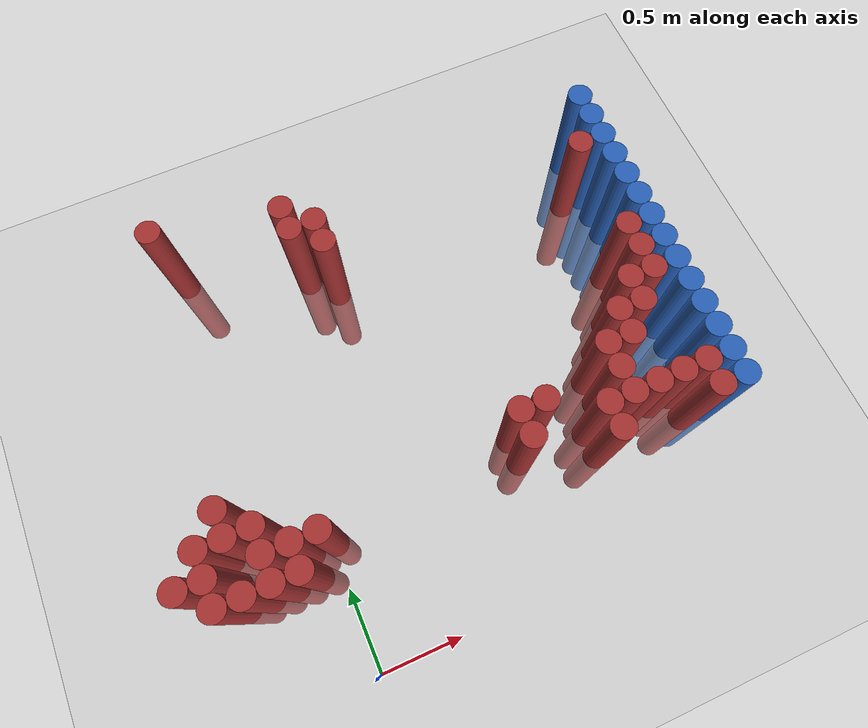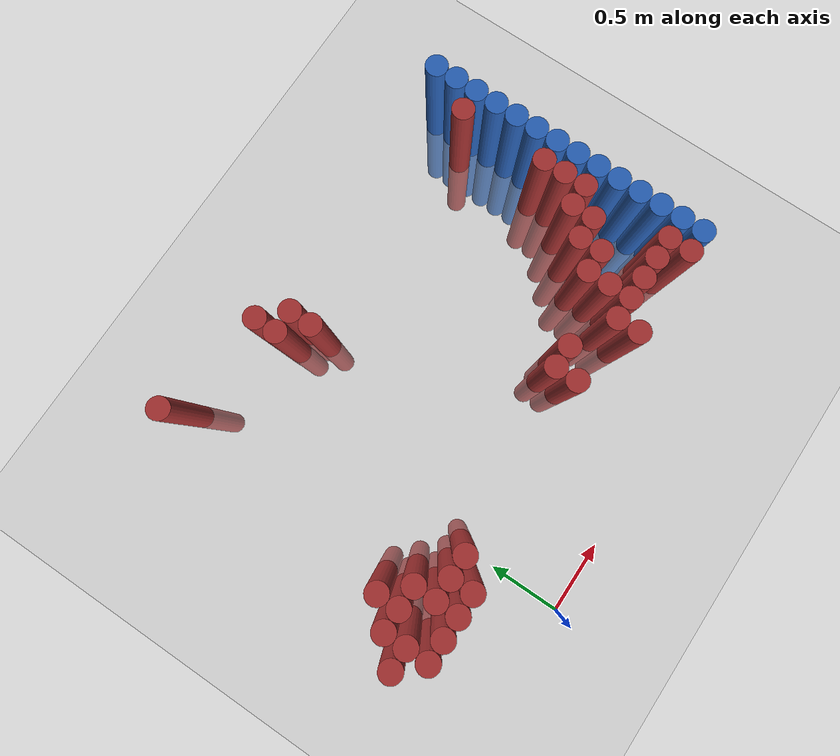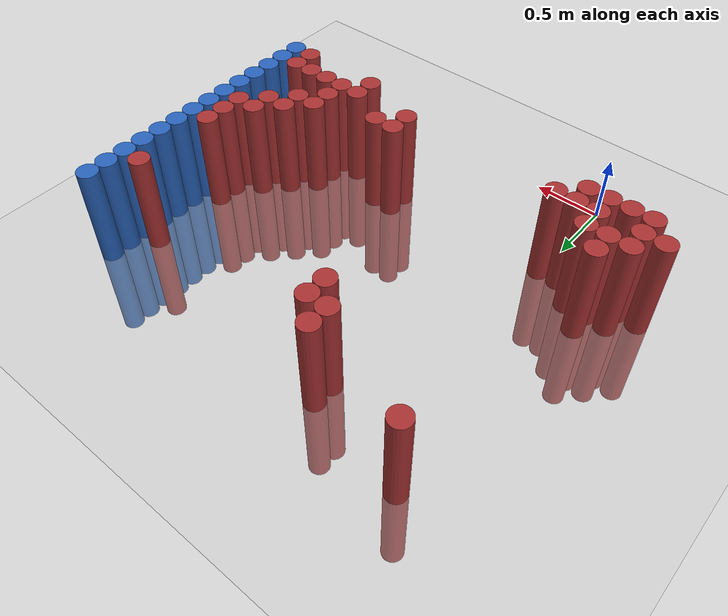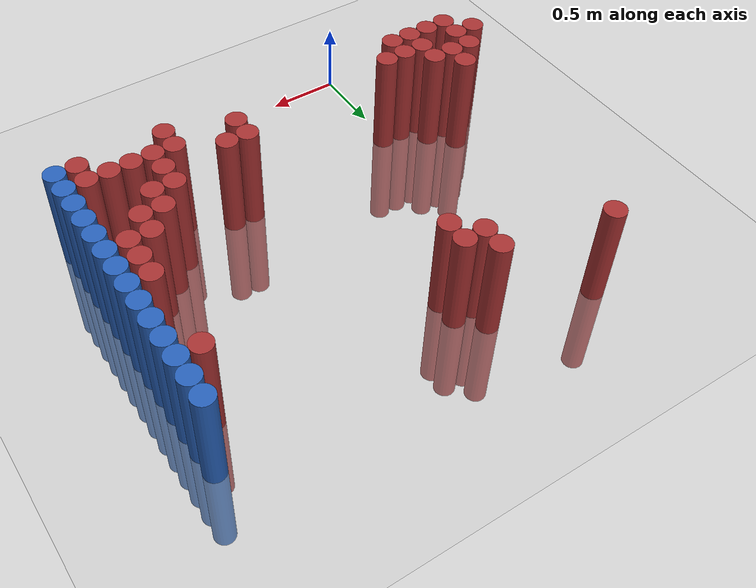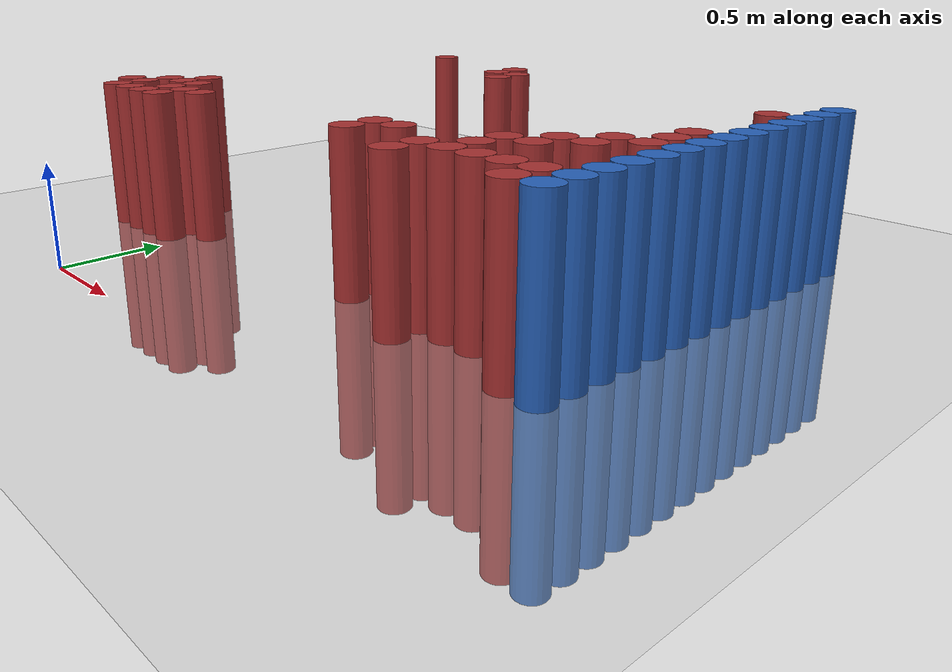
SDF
<sdf version="1.6">
 <world name="default">
  <model name="ground_plane">
   <static>1</static>
   <link name="link">
    <collision name="collision">
     <geometry><plane><normal>0 0 1</normal><size>100 100</size></plane></geometry>
     <surface><friction><ode><mu>100</mu><mu2>50</mu2></ode></friction></surface>
    </collision>
    <visual name="visual">
     <cast_shadows>0</cast_shadows>
     <geometry><plane><normal>0 0 1</normal><size>100 100</size></plane></geometry>
     <material>
      <script><uri>file://media/materials/scripts/gazebo.material</uri><name>Gazebo/Grey</name></script>
     </material>
    </visual>
   </link>
  </model>
  <model name="unit_cylinder_159">
   <static>1</static>
   <pose>-0.725000 0.775000 0.000000 0.000000 0.000000 0.000000</pose>
   <link name="link">
    <inertial>
     <mass>1</mass>
     <inertia><ixx>0.145833</ixx><ixy>0</ixy><ixz>0</ixz><iyy>0.145833</iyy><iyz>0</iyz><izz>0.125</izz></inertia>
    </inertial>
    <collision name="collision">
     <geometry><cylinder><radius>0.075000</radius><length>1.5</length></cylinder></geometry>
    </collision>
    <visual name="visual">
     <geometry><cylinder><radius>0.075000</radius><length>1.5</length></cylinder></geometry>
     <material>
      <ambient>0.648000 0.192000 0.192000 1</ambient>
      <diffuse>0.648000 0.192000 0.192000 1</diffuse>
     </material>
     <material>
      <script><name>Gazebo/Grey</name><uri>file://media/materials/scripts/gazebo.material</uri></script>
     </material>
    </visual>
   </link>
  </model>
  <model name="unit_cylinder_163">
   <static>1</static>
   <pose>-0.575000 0.625000 0.000000 0.000000 0.000000 0.000000</pose>
   <link name="link">
    <inertial>
     <mass>1</mass>
     <inertia><ixx>0.145833</ixx><ixy>0</ixy><ixz>0</ixz><iyy>0.145833</iyy><iyz>0</iyz><izz>0.125</izz></inertia>
    </inertial>
    <collision name="collision">
     <geometry><cylinder><radius>0.075000</radius><length>1.5</length></cylinder></geometry>
    </collision>
    <visual name="visual">
     <geometry><cylinder><radius>0.075000</radius><length>1.5</length></cylinder></geometry>
     <material>
      <ambient>0.648000 0.192000 0.192000 1</ambient>
      <diffuse>0.648000 0.192000 0.192000 1</diffuse>
     </material>
     <material>
      <script><name>Gazebo/Grey</name><uri>file://media/materials/scripts/gazebo.material</uri></script>
     </material>
    </visual>
   </link>
  </model>
  <model name="unit_cylinder_164">
   <static>1</static>
   <pose>-0.575000 0.775000 0.000000 0.000000 0.000000 0.000000</pose>
   <link name="link">
    <inertial>
     <mass>1</mass>
     <inertia><ixx>0.145833</ixx><ixy>0</ixy><ixz>0</ixz><iyy>0.145833</iyy><iyz>0</iyz><izz>0.125</izz></inertia>
    </inertial>
    <collision name="collision">
     <geometry><cylinder><radius>0.075000</radius><length>1.5</length></cylinder></geometry>
    </collision>
    <visual name="visual">
     <geometry><cylinder><radius>0.075000</radius><length>1.5</length></cylinder></geometry>
     <material>
      <ambient>0.648000 0.192000 0.192000 1</ambient>
      <diffuse>0.648000 0.192000 0.192000 1</diffuse>
     </material>
     <material>
      <script><name>Gazebo/Grey</name><uri>file://media/materials/scripts/gazebo.material</uri></script>
     </material>
    </visual>
   </link>
  </model>
  <model name="unit_cylinder_165">
   <static>1</static>
   <pose>-0.575000 0.925000 0.000000 0.000000 0.000000 0.000000</pose>
   <link name="link">
    <inertial>
     <mass>1</mass>
     <inertia><ixx>0.145833</ixx><ixy>0</ixy><ixz>0</ixz><iyy>0.145833</iyy><iyz>0</iyz><izz>0.125</izz></inertia>
    </inertial>
    <collision name="collision">
     <geometry><cylinder><radius>0.075000</radius><length>1.5</length></cylinder></geometry>
    </collision>
    <visual name="visual">
     <geometry><cylinder><radius>0.075000</radius><length>1.5</length></cylinder></geometry>
     <material>
      <ambient>0.648000 0.192000 0.192000 1</ambient>
      <diffuse>0.648000 0.192000 0.192000 1</diffuse>
     </material>
     <material>
      <script><name>Gazebo/Grey</name><uri>file://media/materials/scripts/gazebo.material</uri></script>
     </material>
    </visual>
   </link>
  </model>
  <model name="unit_cylinder_169">
   <static>1</static>
   <pose>-0.425000 0.625000 0.000000 0.000000 0.000000 0.000000</pose>
   <link name="link">
    <inertial>
     <mass>1</mass>
     <inertia><ixx>0.145833</ixx><ixy>0</ixy><ixz>0</ixz><iyy>0.145833</iyy><iyz>0</iyz><izz>0.125</izz></inertia>
    </inertial>
    <collision name="collision">
     <geometry><cylinder><radius>0.075000</radius><length>1.5</length></cylinder></geometry>
    </collision>
    <visual name="visual">
     <geometry><cylinder><radius>0.075000</radius><length>1.5</length></cylinder></geometry>
     <material>
      <ambient>0.648000 0.192000 0.192000 1</ambient>
      <diffuse>0.648000 0.192000 0.192000 1</diffuse>
     </material>
     <material>
      <script><name>Gazebo/Grey</name><uri>file://media/materials/scripts/gazebo.material</uri></script>
     </material>
    </visual>
   </link>
  </model>
  <model name="unit_cylinder_170">
   <static>1</static>
   <pose>-0.425000 0.925000 0.000000 0.000000 0.000000 0.000000</pose>
   <link name="link">
    <inertial>
     <mass>1</mass>
     <inertia><ixx>0.145833</ixx><ixy>0</ixy><ixz>0</ixz><iyy>0.145833</iyy><iyz>0</iyz><izz>0.125</izz></inertia>
    </inertial>
    <collision name="collision">
     <geometry><cylinder><radius>0.075000</radius><length>1.5</length></cylinder></geometry>
    </collision>
    <visual name="visual">
     <geometry><cylinder><radius>0.075000</radius><length>1.5</length></cylinder></geometry>
     <material>
      <ambient>0.648000 0.192000 0.192000 1</ambient>
      <diffuse>0.648000 0.192000 0.192000 1</diffuse>
     </material>
     <material>
      <script><name>Gazebo/Grey</name><uri>file://media/materials/scripts/gazebo.material</uri></script>
     </material>
    </visual>
   </link>
  </model>
  <model name="unit_cylinder_171">
   <static>1</static>
   <pose>-0.425000 1.075000 0.000000 0.000000 0.000000 0.000000</pose>
   <link name="link">
    <inertial>
     <mass>1</mass>
     <inertia><ixx>0.145833</ixx><ixy>0</ixy><ixz>0</ixz><iyy>0.145833</iyy><iyz>0</iyz><izz>0.125</izz></inertia>
    </inertial>
    <collision name="collision">
     <geometry><cylinder><radius>0.075000</radius><length>1.5</length></cylinder></geometry>
    </collision>
    <visual name="visual">
     <geometry><cylinder><radius>0.075000</radius><length>1.5</length></cylinder></geometry>
     <material>
      <ambient>0.648000 0.192000 0.192000 1</ambient>
      <diffuse>0.648000 0.192000 0.192000 1</diffuse>
     </material>
     <material>
      <script><name>Gazebo/Grey</name><uri>file://media/materials/scripts/gazebo.material</uri></script>
     </material>
    </visual>
   </link>
  </model>
  <model name="unit_cylinder_176">
   <static>1</static>
   <pose>-0.275000 0.625000 0.000000 0.000000 0.000000 0.000000</pose>
   <link name="link">
    <inertial>
     <mass>1</mass>
     <inertia><ixx>0.145833</ixx><ixy>0</ixy><ixz>0</ixz><iyy>0.145833</iyy><iyz>0</iyz><izz>0.125</izz></inertia>
    </inertial>
    <collision name="collision">
     <geometry><cylinder><radius>0.075000</radius><length>1.5</length></cylinder></geometry>
    </collision>
    <visual name="visual">
     <geometry><cylinder><radius>0.075000</radius><length>1.5</length></cylinder></geometry>
     <material>
      <ambient>0.648000 0.192000 0.192000 1</ambient>
      <diffuse>0.648000 0.192000 0.192000 1</diffuse>
     </material>
     <material>
      <script><name>Gazebo/Grey</name><uri>file://media/materials/scripts/gazebo.material</uri></script>
     </material>
    </visual>
   </link>
  </model>
  <model name="unit_cylinder_177">
   <static>1</static>
   <pose>-0.275000 0.775000 0.000000 0.000000 0.000000 0.000000</pose>
   <link name="link">
    <inertial>
     <mass>1</mass>
     <inertia><ixx>0.145833</ixx><ixy>0</ixy><ixz>0</ixz><iyy>0.145833</iyy><iyz>0</iyz><izz>0.125</izz></inertia>
    </inertial>
    <collision name="collision">
     <geometry><cylinder><radius>0.075000</radius><length>1.5</length></cylinder></geometry>
    </collision>
    <visual name="visual">
     <geometry><cylinder><radius>0.075000</radius><length>1.5</length></cylinder></geometry>
     <material>
      <ambient>0.648000 0.192000 0.192000 1</ambient>
      <diffuse>0.648000 0.192000 0.192000 1</diffuse>
     </material>
     <material>
      <script><name>Gazebo/Grey</name><uri>file://media/materials/scripts/gazebo.material</uri></script>
     </material>
    </visual>
   </link>
  </model>
  <model name="unit_cylinder_178">
   <static>1</static>
   <pose>-0.275000 0.925000 0.000000 0.000000 0.000000 0.000000</pose>
   <link name="link">
    <inertial>
     <mass>1</mass>
     <inertia><ixx>0.145833</ixx><ixy>0</ixy><ixz>0</ixz><iyy>0.145833</iyy><iyz>0</iyz><izz>0.125</izz></inertia>
    </inertial>
    <collision name="collision">
     <geometry><cylinder><radius>0.075000</radius><length>1.5</length></cylinder></geometry>
    </collision>
    <visual name="visual">
     <geometry><cylinder><radius>0.075000</radius><length>1.5</length></cylinder></geometry>
     <material>
      <ambient>0.648000 0.192000 0.192000 1</ambient>
      <diffuse>0.648000 0.192000 0.192000 1</diffuse>
     </material>
     <material>
      <script><name>Gazebo/Grey</name><uri>file://media/materials/scripts/gazebo.material</uri></script>
     </material>
    </visual>
   </link>
  </model>
  <model name="unit_cylinder_179">
   <static>1</static>
   <pose>-0.275000 2.725000 0.000000 0.000000 0.000000 0.000000</pose>
   <link name="link">
    <inertial>
     <mass>1</mass>
     <inertia><ixx>0.145833</ixx><ixy>0</ixy><ixz>0</ixz><iyy>0.145833</iyy><iyz>0</iyz><izz>0.125</izz></inertia>
    </inertial>
    <collision name="collision">
     <geometry><cylinder><radius>0.075000</radius><length>1.5</length></cylinder></geometry>
    </collision>
    <visual name="visual">
     <geometry><cylinder><radius>0.075000</radius><length>1.5</length></cylinder></geometry>
     <material>
      <ambient>0.648000 0.192000 0.192000 1</ambient>
      <diffuse>0.648000 0.192000 0.192000 1</diffuse>
     </material>
     <material>
      <script><name>Gazebo/Grey</name><uri>file://media/materials/scripts/gazebo.material</uri></script>
     </material>
    </visual>
   </link>
  </model>
  <model name="unit_cylinder_181">
   <static>1</static>
   <pose>-0.125000 0.625000 0.000000 0.000000 0.000000 0.000000</pose>
   <link name="link">
    <inertial>
     <mass>1</mass>
     <inertia><ixx>0.145833</ixx><ixy>0</ixy><ixz>0</ixz><iyy>0.145833</iyy><iyz>0</iyz><izz>0.125</izz></inertia>
    </inertial>
    <collision name="collision">
     <geometry><cylinder><radius>0.075000</radius><length>1.5</length></cylinder></geometry>
    </collision>
    <visual name="visual">
     <geometry><cylinder><radius>0.075000</radius><length>1.5</length></cylinder></geometry>
     <material>
      <ambient>0.648000 0.192000 0.192000 1</ambient>
      <diffuse>0.648000 0.192000 0.192000 1</diffuse>
     </material>
     <material>
      <script><name>Gazebo/Grey</name><uri>file://media/materials/scripts/gazebo.material</uri></script>
     </material>
    </visual>
   </link>
  </model>
  <model name="unit_cylinder_182">
   <static>1</static>
   <pose>-0.125000 0.775000 0.000000 0.000000 0.000000 0.000000</pose>
   <link name="link">
    <inertial>
     <mass>1</mass>
     <inertia><ixx>0.145833</ixx><ixy>0</ixy><ixz>0</ixz><iyy>0.145833</iyy><iyz>0</iyz><izz>0.125</izz></inertia>
    </inertial>
    <collision name="collision">
     <geometry><cylinder><radius>0.075000</radius><length>1.5</length></cylinder></geometry>
    </collision>
    <visual name="visual">
     <geometry><cylinder><radius>0.075000</radius><length>1.5</length></cylinder></geometry>
     <material>
      <ambient>0.648000 0.192000 0.192000 1</ambient>
      <diffuse>0.648000 0.192000 0.192000 1</diffuse>
     </material>
     <material>
      <script><name>Gazebo/Grey</name><uri>file://media/materials/scripts/gazebo.material</uri></script>
     </material>
    </visual>
   </link>
  </model>
  <model name="unit_cylinder_187">
   <static>1</static>
   <pose>0.025000 0.775000 0.000000 0.000000 0.000000 0.000000</pose>
   <link name="link">
    <inertial>
     <mass>1</mass>
     <inertia><ixx>0.145833</ixx><ixy>0</ixy><ixz>0</ixz><iyy>0.145833</iyy><iyz>0</iyz><izz>0.125</izz></inertia>
    </inertial>
    <collision name="collision">
     <geometry><cylinder><radius>0.075000</radius><length>1.5</length></cylinder></geometry>
    </collision>
    <visual name="visual">
     <geometry><cylinder><radius>0.075000</radius><length>1.5</length></cylinder></geometry>
     <material>
      <ambient>0.648000 0.192000 0.192000 1</ambient>
      <diffuse>0.648000 0.192000 0.192000 1</diffuse>
     </material>
     <material>
      <script><name>Gazebo/Grey</name><uri>file://media/materials/scripts/gazebo.material</uri></script>
     </material>
    </visual>
   </link>
  </model>
  <model name="unit_cylinder_196">
   <static>1</static>
   <pose>0.475000 2.425000 0.000000 0.000000 0.000000 0.000000</pose>
   <link name="link">
    <inertial>
     <mass>1</mass>
     <inertia><ixx>0.145833</ixx><ixy>0</ixy><ixz>0</ixz><iyy>0.145833</iyy><iyz>0</iyz><izz>0.125</izz></inertia>
    </inertial>
    <collision name="collision">
     <geometry><cylinder><radius>0.075000</radius><length>1.5</length></cylinder></geometry>
    </collision>
    <visual name="visual">
     <geometry><cylinder><radius>0.075000</radius><length>1.5</length></cylinder></geometry>
     <material>
      <ambient>0.648000 0.192000 0.192000 1</ambient>
      <diffuse>0.648000 0.192000 0.192000 1</diffuse>
     </material>
     <material>
      <script><name>Gazebo/Grey</name><uri>file://media/materials/scripts/gazebo.material</uri></script>
     </material>
    </visual>
   </link>
  </model>
  <model name="unit_cylinder_197">
   <static>1</static>
   <pose>0.475000 2.575000 0.000000 0.000000 0.000000 0.000000</pose>
   <link name="link">
    <inertial>
     <mass>1</mass>
     <inertia><ixx>0.145833</ixx><ixy>0</ixy><ixz>0</ixz><iyy>0.145833</iyy><iyz>0</iyz><izz>0.125</izz></inertia>
    </inertial>
    <collision name="collision">
     <geometry><cylinder><radius>0.075000</radius><length>1.5</length></cylinder></geometry>
    </collision>
    <visual name="visual">
     <geometry><cylinder><radius>0.075000</radius><length>1.5</length></cylinder></geometry>
     <material>
      <ambient>0.648000 0.192000 0.192000 1</ambient>
      <diffuse>0.648000 0.192000 0.192000 1</diffuse>
     </material>
     <material>
      <script><name>Gazebo/Grey</name><uri>file://media/materials/scripts/gazebo.material</uri></script>
     </material>
    </visual>
   </link>
  </model>
  <model name="unit_cylinder_198">
   <static>1</static>
   <pose>0.625000 2.275000 0.000000 0.000000 0.000000 0.000000</pose>
   <link name="link">
    <inertial>
     <mass>1</mass>
     <inertia><ixx>0.145833</ixx><ixy>0</ixy><ixz>0</ixz><iyy>0.145833</iyy><iyz>0</iyz><izz>0.125</izz></inertia>
    </inertial>
    <collision name="collision">
     <geometry><cylinder><radius>0.075000</radius><length>1.5</length></cylinder></geometry>
    </collision>
    <visual name="visual">
     <geometry><cylinder><radius>0.075000</radius><length>1.5</length></cylinder></geometry>
     <material>
      <ambient>0.648000 0.192000 0.192000 1</ambient>
      <diffuse>0.648000 0.192000 0.192000 1</diffuse>
     </material>
     <material>
      <script><name>Gazebo/Grey</name><uri>file://media/materials/scripts/gazebo.material</uri></script>
     </material>
    </visual>
   </link>
  </model>
  <model name="unit_cylinder_199">
   <static>1</static>
   <pose>0.625000 2.425000 0.000000 0.000000 0.000000 0.000000</pose>
   <link name="link">
    <inertial>
     <mass>1</mass>
     <inertia><ixx>0.145833</ixx><ixy>0</ixy><ixz>0</ixz><iyy>0.145833</iyy><iyz>0</iyz><izz>0.125</izz></inertia>
    </inertial>
    <collision name="collision">
     <geometry><cylinder><radius>0.075000</radius><length>1.5</length></cylinder></geometry>
    </collision>
    <visual name="visual">
     <geometry><cylinder><radius>0.075000</radius><length>1.5</length></cylinder></geometry>
     <material>
      <ambient>0.648000 0.192000 0.192000 1</ambient>
      <diffuse>0.648000 0.192000 0.192000 1</diffuse>
     </material>
     <material>
      <script><name>Gazebo/Grey</name><uri>file://media/materials/scripts/gazebo.material</uri></script>
     </material>
    </visual>
   </link>
  </model>
  <model name="unit_cylinder_207">
   <static>1</static>
   <pose>1.225000 0.775000 0.000000 0.000000 0.000000 0.000000</pose>
   <link name="link">
    <inertial>
     <mass>1</mass>
     <inertia><ixx>0.145833</ixx><ixy>0</ixy><ixz>0</ixz><iyy>0.145833</iyy><iyz>0</iyz><izz>0.125</izz></inertia>
    </inertial>
    <collision name="collision">
     <geometry><cylinder><radius>0.075000</radius><length>1.5</length></cylinder></geometry>
    </collision>
    <visual name="visual">
     <geometry><cylinder><radius>0.075000</radius><length>1.5</length></cylinder></geometry>
     <material>
      <ambient>0.648000 0.192000 0.192000 1</ambient>
      <diffuse>0.648000 0.192000 0.192000 1</diffuse>
     </material>
     <material>
      <script><name>Gazebo/Grey</name><uri>file://media/materials/scripts/gazebo.material</uri></script>
     </material>
    </visual>
   </link>
  </model>
  <model name="unit_cylinder_208">
   <static>1</static>
   <pose>1.225000 0.925000 0.000000 0.000000 0.000000 0.000000</pose>
   <link name="link">
    <inertial>
     <mass>1</mass>
     <inertia><ixx>0.145833</ixx><ixy>0</ixy><ixz>0</ixz><iyy>0.145833</iyy><iyz>0</iyz><izz>0.125</izz></inertia>
    </inertial>
    <collision name="collision">
     <geometry><cylinder><radius>0.075000</radius><length>1.5</length></cylinder></geometry>
    </collision>
    <visual name="visual">
     <geometry><cylinder><radius>0.075000</radius><length>1.5</length></cylinder></geometry>
     <material>
      <ambient>0.648000 0.192000 0.192000 1</ambient>
      <diffuse>0.648000 0.192000 0.192000 1</diffuse>
     </material>
     <material>
      <script><name>Gazebo/Grey</name><uri>file://media/materials/scripts/gazebo.material</uri></script>
     </material>
    </visual>
   </link>
  </model>
  <model name="unit_cylinder_209">
   <static>1</static>
   <pose>1.375000 0.925000 0.000000 0.000000 0.000000 0.000000</pose>
   <link name="link">
    <inertial>
     <mass>1</mass>
     <inertia><ixx>0.145833</ixx><ixy>0</ixy><ixz>0</ixz><iyy>0.145833</iyy><iyz>0</iyz><izz>0.125</izz></inertia>
    </inertial>
    <collision name="collision">
     <geometry><cylinder><radius>0.075000</radius><length>1.5</length></cylinder></geometry>
    </collision>
    <visual name="visual">
     <geometry><cylinder><radius>0.075000</radius><length>1.5</length></cylinder></geometry>
     <material>
      <ambient>0.648000 0.192000 0.192000 1</ambient>
      <diffuse>0.648000 0.192000 0.192000 1</diffuse>
     </material>
     <material>
      <script><name>Gazebo/Grey</name><uri>file://media/materials/scripts/gazebo.material</uri></script>
     </material>
    </visual>
   </link>
  </model>
  <model name="unit_cylinder_210">
   <static>1</static>
   <pose>1.675000 0.625000 0.000000 0.000000 0.000000 0.000000</pose>
   <link name="link">
    <inertial>
     <mass>1</mass>
     <inertia><ixx>0.145833</ixx><ixy>0</ixy><ixz>0</ixz><iyy>0.145833</iyy><iyz>0</iyz><izz>0.125</izz></inertia>
    </inertial>
    <collision name="collision">
     <geometry><cylinder><radius>0.075000</radius><length>1.5</length></cylinder></geometry>
    </collision>
    <visual name="visual">
     <geometry><cylinder><radius>0.075000</radius><length>1.5</length></cylinder></geometry>
     <material>
      <ambient>0.648000 0.192000 0.192000 1</ambient>
      <diffuse>0.648000 0.192000 0.192000 1</diffuse>
     </material>
     <material>
      <script><name>Gazebo/Grey</name><uri>file://media/materials/scripts/gazebo.material</uri></script>
     </material>
    </visual>
   </link>
  </model>
  <model name="unit_cylinder_211">
   <static>1</static>
   <pose>1.675000 0.775000 0.000000 0.000000 0.000000 0.000000</pose>
   <link name="link">
    <inertial>
     <mass>1</mass>
     <inertia><ixx>0.145833</ixx><ixy>0</ixy><ixz>0</ixz><iyy>0.145833</iyy><iyz>0</iyz><izz>0.125</izz></inertia>
    </inertial>
    <collision name="collision">
     <geometry><cylinder><radius>0.075000</radius><length>1.5</length></cylinder></geometry>
    </collision>
    <visual name="visual">
     <geometry><cylinder><radius>0.075000</radius><length>1.5</length></cylinder></geometry>
     <material>
      <ambient>0.648000 0.192000 0.192000 1</ambient>
      <diffuse>0.648000 0.192000 0.192000 1</diffuse>
     </material>
     <material>
      <script><name>Gazebo/Grey</name><uri>file://media/materials/scripts/gazebo.material</uri></script>
     </material>
    </visual>
   </link>
  </model>
  <model name="unit_cylinder_212">
   <static>1</static>
   <pose>1.825000 0.775000 0.000000 0.000000 0.000000 0.000000</pose>
   <link name="link">
    <inertial>
     <mass>1</mass>
     <inertia><ixx>0.145833</ixx><ixy>0</ixy><ixz>0</ixz><iyy>0.145833</iyy><iyz>0</iyz><izz>0.125</izz></inertia>
    </inertial>
    <collision name="collision">
     <geometry><cylinder><radius>0.075000</radius><length>1.5</length></cylinder></geometry>
    </collision>
    <visual name="visual">
     <geometry><cylinder><radius>0.075000</radius><length>1.5</length></cylinder></geometry>
     <material>
      <ambient>0.648000 0.192000 0.192000 1</ambient>
      <diffuse>0.648000 0.192000 0.192000 1</diffuse>
     </material>
     <material>
      <script><name>Gazebo/Grey</name><uri>file://media/materials/scripts/gazebo.material</uri></script>
     </material>
    </visual>
   </link>
  </model>
  <model name="unit_cylinder_213">
   <static>1</static>
   <pose>1.825000 0.925000 0.000000 0.000000 0.000000 0.000000</pose>
   <link name="link">
    <inertial>
     <mass>1</mass>
     <inertia><ixx>0.145833</ixx><ixy>0</ixy><ixz>0</ixz><iyy>0.145833</iyy><iyz>0</iyz><izz>0.125</izz></inertia>
    </inertial>
    <collision name="collision">
     <geometry><cylinder><radius>0.075000</radius><length>1.5</length></cylinder></geometry>
    </collision>
    <visual name="visual">
     <geometry><cylinder><radius>0.075000</radius><length>1.5</length></cylinder></geometry>
     <material>
      <ambient>0.648000 0.192000 0.192000 1</ambient>
      <diffuse>0.648000 0.192000 0.192000 1</diffuse>
     </material>
     <material>
      <script><name>Gazebo/Grey</name><uri>file://media/materials/scripts/gazebo.material</uri></script>
     </material>
    </visual>
   </link>
  </model>
  <model name="unit_cylinder_214">
   <static>1</static>
   <pose>1.825000 1.075000 0.000000 0.000000 0.000000 0.000000</pose>
   <link name="link">
    <inertial>
     <mass>1</mass>
     <inertia><ixx>0.145833</ixx><ixy>0</ixy><ixz>0</ixz><iyy>0.145833</iyy><iyz>0</iyz><izz>0.125</izz></inertia>
    </inertial>
    <collision name="collision">
     <geometry><cylinder><radius>0.075000</radius><length>1.5</length></cylinder></geometry>
    </collision>
    <visual name="visual">
     <geometry><cylinder><radius>0.075000</radius><length>1.5</length></cylinder></geometry>
     <material>
      <ambient>0.648000 0.192000 0.192000 1</ambient>
      <diffuse>0.648000 0.192000 0.192000 1</diffuse>
     </material>
     <material>
      <script><name>Gazebo/Grey</name><uri>file://media/materials/scripts/gazebo.material</uri></script>
     </material>
    </visual>
   </link>
  </model>
  <model name="unit_cylinder_215">
   <static>1</static>
   <pose>1.975000 0.775000 0.000000 0.000000 0.000000 0.000000</pose>
   <link name="link">
    <inertial>
     <mass>1</mass>
     <inertia><ixx>0.145833</ixx><ixy>0</ixy><ixz>0</ixz><iyy>0.145833</iyy><iyz>0</iyz><izz>0.125</izz></inertia>
    </inertial>
    <collision name="collision">
     <geometry><cylinder><radius>0.075000</radius><length>1.5</length></cylinder></geometry>
    </collision>
    <visual name="visual">
     <geometry><cylinder><radius>0.075000</radius><length>1.5</length></cylinder></geometry>
     <material>
      <ambient>0.648000 0.192000 0.192000 1</ambient>
      <diffuse>0.648000 0.192000 0.192000 1</diffuse>
     </material>
     <material>
      <script><name>Gazebo/Grey</name><uri>file://media/materials/scripts/gazebo.material</uri></script>
     </material>
    </visual>
   </link>
  </model>
  <model name="unit_cylinder_216">
   <static>1</static>
   <pose>1.975000 1.075000 0.000000 0.000000 0.000000 0.000000</pose>
   <link name="link">
    <inertial>
     <mass>1</mass>
     <inertia><ixx>0.145833</ixx><ixy>0</ixy><ixz>0</ixz><iyy>0.145833</iyy><iyz>0</iyz><izz>0.125</izz></inertia>
    </inertial>
    <collision name="collision">
     <geometry><cylinder><radius>0.075000</radius><length>1.5</length></cylinder></geometry>
    </collision>
    <visual name="visual">
     <geometry><cylinder><radius>0.075000</radius><length>1.5</length></cylinder></geometry>
     <material>
      <ambient>0.648000 0.192000 0.192000 1</ambient>
      <diffuse>0.648000 0.192000 0.192000 1</diffuse>
     </material>
     <material>
      <script><name>Gazebo/Grey</name><uri>file://media/materials/scripts/gazebo.material</uri></script>
     </material>
    </visual>
   </link>
  </model>
  <model name="unit_cylinder_217">
   <static>1</static>
   <pose>1.975000 1.225000 0.000000 0.000000 0.000000 0.000000</pose>
   <link name="link">
    <inertial>
     <mass>1</mass>
     <inertia><ixx>0.145833</ixx><ixy>0</ixy><ixz>0</ixz><iyy>0.145833</iyy><iyz>0</iyz><izz>0.125</izz></inertia>
    </inertial>
    <collision name="collision">
     <geometry><cylinder><radius>0.075000</radius><length>1.5</length></cylinder></geometry>
    </collision>
    <visual name="visual">
     <geometry><cylinder><radius>0.075000</radius><length>1.5</length></cylinder></geometry>
     <material>
      <ambient>0.648000 0.192000 0.192000 1</ambient>
      <diffuse>0.648000 0.192000 0.192000 1</diffuse>
     </material>
     <material>
      <script><name>Gazebo/Grey</name><uri>file://media/materials/scripts/gazebo.material</uri></script>
     </material>
    </visual>
   </link>
  </model>
  <model name="unit_cylinder_218">
   <static>1</static>
   <pose>2.125000 0.775000 0.000000 0.000000 0.000000 0.000000</pose>
   <link name="link">
    <inertial>
     <mass>1</mass>
     <inertia><ixx>0.145833</ixx><ixy>0</ixy><ixz>0</ixz><iyy>0.145833</iyy><iyz>0</iyz><izz>0.125</izz></inertia>
    </inertial>
    <collision name="collision">
     <geometry><cylinder><radius>0.075000</radius><length>1.5</length></cylinder></geometry>
    </collision>
    <visual name="visual">
     <geometry><cylinder><radius>0.075000</radius><length>1.5</length></cylinder></geometry>
     <material>
      <ambient>0.648000 0.192000 0.192000 1</ambient>
      <diffuse>0.648000 0.192000 0.192000 1</diffuse>
     </material>
     <material>
      <script><name>Gazebo/Grey</name><uri>file://media/materials/scripts/gazebo.material</uri></script>
     </material>
    </visual>
   </link>
  </model>
  <model name="unit_cylinder_219">
   <static>1</static>
   <pose>2.125000 1.225000 0.000000 0.000000 0.000000 0.000000</pose>
   <link name="link">
    <inertial>
     <mass>1</mass>
     <inertia><ixx>0.145833</ixx><ixy>0</ixy><ixz>0</ixz><iyy>0.145833</iyy><iyz>0</iyz><izz>0.125</izz></inertia>
    </inertial>
    <collision name="collision">
     <geometry><cylinder><radius>0.075000</radius><length>1.5</length></cylinder></geometry>
    </collision>
    <visual name="visual">
     <geometry><cylinder><radius>0.075000</radius><length>1.5</length></cylinder></geometry>
     <material>
      <ambient>0.648000 0.192000 0.192000 1</ambient>
      <diffuse>0.648000 0.192000 0.192000 1</diffuse>
     </material>
     <material>
      <script><name>Gazebo/Grey</name><uri>file://media/materials/scripts/gazebo.material</uri></script>
     </material>
    </visual>
   </link>
  </model>
  <model name="unit_cylinder_220">
   <static>1</static>
   <pose>2.125000 1.375000 0.000000 0.000000 0.000000 0.000000</pose>
   <link name="link">
    <inertial>
     <mass>1</mass>
     <inertia><ixx>0.145833</ixx><ixy>0</ixy><ixz>0</ixz><iyy>0.145833</iyy><iyz>0</iyz><izz>0.125</izz></inertia>
    </inertial>
    <collision name="collision">
     <geometry><cylinder><radius>0.075000</radius><length>1.5</length></cylinder></geometry>
    </collision>
    <visual name="visual">
     <geometry><cylinder><radius>0.075000</radius><length>1.5</length></cylinder></geometry>
     <material>
      <ambient>0.648000 0.192000 0.192000 1</ambient>
      <diffuse>0.648000 0.192000 0.192000 1</diffuse>
     </material>
     <material>
      <script><name>Gazebo/Grey</name><uri>file://media/materials/scripts/gazebo.material</uri></script>
     </material>
    </visual>
   </link>
  </model>
  <model name="unit_cylinder_221">
   <static>1</static>
   <pose>2.275000 0.625000 0.000000 0.000000 0.000000 0.000000</pose>
   <link name="link">
    <inertial>
     <mass>1</mass>
     <inertia><ixx>0.145833</ixx><ixy>0</ixy><ixz>0</ixz><iyy>0.145833</iyy><iyz>0</iyz><izz>0.125</izz></inertia>
    </inertial>
    <collision name="collision">
     <geometry><cylinder><radius>0.075000</radius><length>1.5</length></cylinder></geometry>
    </collision>
    <visual name="visual">
     <geometry><cylinder><radius>0.075000</radius><length>1.5</length></cylinder></geometry>
     <material>
      <ambient>0.648000 0.192000 0.192000 1</ambient>
      <diffuse>0.648000 0.192000 0.192000 1</diffuse>
     </material>
     <material>
      <script><name>Gazebo/Grey</name><uri>file://media/materials/scripts/gazebo.material</uri></script>
     </material>
    </visual>
   </link>
  </model>
  <model name="unit_cylinder_222">
   <static>1</static>
   <pose>2.275000 0.775000 0.000000 0.000000 0.000000 0.000000</pose>
   <link name="link">
    <inertial>
     <mass>1</mass>
     <inertia><ixx>0.145833</ixx><ixy>0</ixy><ixz>0</ixz><iyy>0.145833</iyy><iyz>0</iyz><izz>0.125</izz></inertia>
    </inertial>
    <collision name="collision">
     <geometry><cylinder><radius>0.075000</radius><length>1.5</length></cylinder></geometry>
    </collision>
    <visual name="visual">
     <geometry><cylinder><radius>0.075000</radius><length>1.5</length></cylinder></geometry>
     <material>
      <ambient>0.648000 0.192000 0.192000 1</ambient>
      <diffuse>0.648000 0.192000 0.192000 1</diffuse>
     </material>
     <material>
      <script><name>Gazebo/Grey</name><uri>file://media/materials/scripts/gazebo.material</uri></script>
     </material>
    </visual>
   </link>
  </model>
  <model name="unit_cylinder_223">
   <static>1</static>
   <pose>2.275000 1.375000 0.000000 0.000000 0.000000 0.000000</pose>
   <link name="link">
    <inertial>
     <mass>1</mass>
     <inertia><ixx>0.145833</ixx><ixy>0</ixy><ixz>0</ixz><iyy>0.145833</iyy><iyz>0</iyz><izz>0.125</izz></inertia>
    </inertial>
    <collision name="collision">
     <geometry><cylinder><radius>0.075000</radius><length>1.5</length></cylinder></geometry>
    </collision>
    <visual name="visual">
     <geometry><cylinder><radius>0.075000</radius><length>1.5</length></cylinder></geometry>
     <material>
      <ambient>0.648000 0.192000 0.192000 1</ambient>
      <diffuse>0.648000 0.192000 0.192000 1</diffuse>
     </material>
     <material>
      <script><name>Gazebo/Grey</name><uri>file://media/materials/scripts/gazebo.material</uri></script>
     </material>
    </visual>
   </link>
  </model>
  <model name="unit_cylinder_224">
   <static>1</static>
   <pose>2.275000 1.525000 0.000000 0.000000 0.000000 0.000000</pose>
   <link name="link">
    <inertial>
     <mass>1</mass>
     <inertia><ixx>0.145833</ixx><ixy>0</ixy><ixz>0</ixz><iyy>0.145833</iyy><iyz>0</iyz><izz>0.125</izz></inertia>
    </inertial>
    <collision name="collision">
     <geometry><cylinder><radius>0.075000</radius><length>1.5</length></cylinder></geometry>
    </collision>
    <visual name="visual">
     <geometry><cylinder><radius>0.075000</radius><length>1.5</length></cylinder></geometry>
     <material>
      <ambient>0.648000 0.192000 0.192000 1</ambient>
      <diffuse>0.648000 0.192000 0.192000 1</diffuse>
     </material>
     <material>
      <script><name>Gazebo/Grey</name><uri>file://media/materials/scripts/gazebo.material</uri></script>
     </material>
    </visual>
   </link>
  </model>
  <model name="unit_cylinder_225">
   <static>1</static>
   <pose>2.275000 1.675000 0.000000 0.000000 0.000000 0.000000</pose>
   <link name="link">
    <inertial>
     <mass>1</mass>
     <inertia><ixx>0.145833</ixx><ixy>0</ixy><ixz>0</ixz><iyy>0.145833</iyy><iyz>0</iyz><izz>0.125</izz></inertia>
    </inertial>
    <collision name="collision">
     <geometry><cylinder><radius>0.075000</radius><length>1.5</length></cylinder></geometry>
    </collision>
    <visual name="visual">
     <geometry><cylinder><radius>0.075000</radius><length>1.5</length></cylinder></geometry>
     <material>
      <ambient>0.648000 0.192000 0.192000 1</ambient>
      <diffuse>0.648000 0.192000 0.192000 1</diffuse>
     </material>
     <material>
      <script><name>Gazebo/Grey</name><uri>file://media/materials/scripts/gazebo.material</uri></script>
     </material>
    </visual>
   </link>
  </model>
  <model name="unit_cylinder_226">
   <static>1</static>
   <pose>2.275000 2.275000 0.000000 0.000000 0.000000 0.000000</pose>
   <link name="link">
    <inertial>
     <mass>1</mass>
     <inertia><ixx>0.145833</ixx><ixy>0</ixy><ixz>0</ixz><iyy>0.145833</iyy><iyz>0</iyz><izz>0.125</izz></inertia>
    </inertial>
    <collision name="collision">
     <geometry><cylinder><radius>0.075000</radius><length>1.5</length></cylinder></geometry>
    </collision>
    <visual name="visual">
     <geometry><cylinder><radius>0.075000</radius><length>1.5</length></cylinder></geometry>
     <material>
      <ambient>0.648000 0.192000 0.192000 1</ambient>
      <diffuse>0.648000 0.192000 0.192000 1</diffuse>
     </material>
     <material>
      <script><name>Gazebo/Grey</name><uri>file://media/materials/scripts/gazebo.material</uri></script>
     </material>
    </visual>
   </link>
  </model>
  <model name="unit_cylinder_232">
   <static>1</static>
   <pose>2.425000 0.625000 0.000000 0.000000 0.000000 0.000000</pose>
   <link name="link">
    <inertial>
     <mass>1</mass>
     <inertia><ixx>0.145833</ixx><ixy>0</ixy><ixz>0</ixz><iyy>0.145833</iyy><iyz>0</iyz><izz>0.125</izz></inertia>
    </inertial>
    <collision name="collision">
     <geometry><cylinder><radius>0.075000</radius><length>1.5</length></cylinder></geometry>
    </collision>
    <visual name="visual">
     <geometry><cylinder><radius>0.075000</radius><length>1.5</length></cylinder></geometry>
     <material>
      <ambient>0.152000 0.379000 0.720000 1</ambient>
      <diffuse>0.152000 0.379000 0.720000 1</diffuse>
     </material>
     <material>
      <script><name>Gazebo/Grey</name><uri>file://media/materials/scripts/gazebo.material</uri></script>
     </material>
    </visual>
   </link>
  </model>
  <model name="unit_cylinder_233">
   <static>1</static>
   <pose>2.425000 0.775000 0.000000 0.000000 0.000000 0.000000</pose>
   <link name="link">
    <inertial>
     <mass>1</mass>
     <inertia><ixx>0.145833</ixx><ixy>0</ixy><ixz>0</ixz><iyy>0.145833</iyy><iyz>0</iyz><izz>0.125</izz></inertia>
    </inertial>
    <collision name="collision">
     <geometry><cylinder><radius>0.075000</radius><length>1.5</length></cylinder></geometry>
    </collision>
    <visual name="visual">
     <geometry><cylinder><radius>0.075000</radius><length>1.5</length></cylinder></geometry>
     <material>
      <ambient>0.152000 0.379000 0.720000 1</ambient>
      <diffuse>0.152000 0.379000 0.720000 1</diffuse>
     </material>
     <material>
      <script><name>Gazebo/Grey</name><uri>file://media/materials/scripts/gazebo.material</uri></script>
     </material>
    </visual>
   </link>
  </model>
  <model name="unit_cylinder_234">
   <static>1</static>
   <pose>2.425000 0.925000 0.000000 0.000000 0.000000 0.000000</pose>
   <link name="link">
    <inertial>
     <mass>1</mass>
     <inertia><ixx>0.145833</ixx><ixy>0</ixy><ixz>0</ixz><iyy>0.145833</iyy><iyz>0</iyz><izz>0.125</izz></inertia>
    </inertial>
    <collision name="collision">
     <geometry><cylinder><radius>0.075000</radius><length>1.5</length></cylinder></geometry>
    </collision>
    <visual name="visual">
     <geometry><cylinder><radius>0.075000</radius><length>1.5</length></cylinder></geometry>
     <material>
      <ambient>0.152000 0.379000 0.720000 1</ambient>
      <diffuse>0.152000 0.379000 0.720000 1</diffuse>
     </material>
     <material>
      <script><name>Gazebo/Grey</name><uri>file://media/materials/scripts/gazebo.material</uri></script>
     </material>
    </visual>
   </link>
  </model>
  <model name="unit_cylinder_235">
   <static>1</static>
   <pose>2.425000 1.075000 0.000000 0.000000 0.000000 0.000000</pose>
   <link name="link">
    <inertial>
     <mass>1</mass>
     <inertia><ixx>0.145833</ixx><ixy>0</ixy><ixz>0</ixz><iyy>0.145833</iyy><iyz>0</iyz><izz>0.125</izz></inertia>
    </inertial>
    <collision name="collision">
     <geometry><cylinder><radius>0.075000</radius><length>1.5</length></cylinder></geometry>
    </collision>
    <visual name="visual">
     <geometry><cylinder><radius>0.075000</radius><length>1.5</length></cylinder></geometry>
     <material>
      <ambient>0.152000 0.379000 0.720000 1</ambient>
      <diffuse>0.152000 0.379000 0.720000 1</diffuse>
     </material>
     <material>
      <script><name>Gazebo/Grey</name><uri>file://media/materials/scripts/gazebo.material</uri></script>
     </material>
    </visual>
   </link>
  </model>
  <model name="unit_cylinder_236">
   <static>1</static>
   <pose>2.425000 1.225000 0.000000 0.000000 0.000000 0.000000</pose>
   <link name="link">
    <inertial>
     <mass>1</mass>
     <inertia><ixx>0.145833</ixx><ixy>0</ixy><ixz>0</ixz><iyy>0.145833</iyy><iyz>0</iyz><izz>0.125</izz></inertia>
    </inertial>
    <collision name="collision">
     <geometry><cylinder><radius>0.075000</radius><length>1.5</length></cylinder></geometry>
    </collision>
    <visual name="visual">
     <geometry><cylinder><radius>0.075000</radius><length>1.5</length></cylinder></geometry>
     <material>
      <ambient>0.152000 0.379000 0.720000 1</ambient>
      <diffuse>0.152000 0.379000 0.720000 1</diffuse>
     </material>
     <material>
      <script><name>Gazebo/Grey</name><uri>file://media/materials/scripts/gazebo.material</uri></script>
     </material>
    </visual>
   </link>
  </model>
  <model name="unit_cylinder_237">
   <static>1</static>
   <pose>2.425000 1.375000 0.000000 0.000000 0.000000 0.000000</pose>
   <link name="link">
    <inertial>
     <mass>1</mass>
     <inertia><ixx>0.145833</ixx><ixy>0</ixy><ixz>0</ixz><iyy>0.145833</iyy><iyz>0</iyz><izz>0.125</izz></inertia>
    </inertial>
    <collision name="collision">
     <geometry><cylinder><radius>0.075000</radius><length>1.5</length></cylinder></geometry>
    </collision>
    <visual name="visual">
     <geometry><cylinder><radius>0.075000</radius><length>1.5</length></cylinder></geometry>
     <material>
      <ambient>0.152000 0.379000 0.720000 1</ambient>
      <diffuse>0.152000 0.379000 0.720000 1</diffuse>
     </material>
     <material>
      <script><name>Gazebo/Grey</name><uri>file://media/materials/scripts/gazebo.material</uri></script>
     </material>
    </visual>
   </link>
  </model>
  <model name="unit_cylinder_238">
   <static>1</static>
   <pose>2.425000 1.525000 0.000000 0.000000 0.000000 0.000000</pose>
   <link name="link">
    <inertial>
     <mass>1</mass>
     <inertia><ixx>0.145833</ixx><ixy>0</ixy><ixz>0</ixz><iyy>0.145833</iyy><iyz>0</iyz><izz>0.125</izz></inertia>
    </inertial>
    <collision name="collision">
     <geometry><cylinder><radius>0.075000</radius><length>1.5</length></cylinder></geometry>
    </collision>
    <visual name="visual">
     <geometry><cylinder><radius>0.075000</radius><length>1.5</length></cylinder></geometry>
     <material>
      <ambient>0.152000 0.379000 0.720000 1</ambient>
      <diffuse>0.152000 0.379000 0.720000 1</diffuse>
     </material>
     <material>
      <script><name>Gazebo/Grey</name><uri>file://media/materials/scripts/gazebo.material</uri></script>
     </material>
    </visual>
   </link>
  </model>
  <model name="unit_cylinder_239">
   <static>1</static>
   <pose>2.425000 1.675000 0.000000 0.000000 0.000000 0.000000</pose>
   <link name="link">
    <inertial>
     <mass>1</mass>
     <inertia><ixx>0.145833</ixx><ixy>0</ixy><ixz>0</ixz><iyy>0.145833</iyy><iyz>0</iyz><izz>0.125</izz></inertia>
    </inertial>
    <collision name="collision">
     <geometry><cylinder><radius>0.075000</radius><length>1.5</length></cylinder></geometry>
    </collision>
    <visual name="visual">
     <geometry><cylinder><radius>0.075000</radius><length>1.5</length></cylinder></geometry>
     <material>
      <ambient>0.152000 0.379000 0.720000 1</ambient>
      <diffuse>0.152000 0.379000 0.720000 1</diffuse>
     </material>
     <material>
      <script><name>Gazebo/Grey</name><uri>file://media/materials/scripts/gazebo.material</uri></script>
     </material>
    </visual>
   </link>
  </model>
  <model name="unit_cylinder_240">
   <static>1</static>
   <pose>2.425000 1.825000 0.000000 0.000000 0.000000 0.000000</pose>
   <link name="link">
    <inertial>
     <mass>1</mass>
     <inertia><ixx>0.145833</ixx><ixy>0</ixy><ixz>0</ixz><iyy>0.145833</iyy><iyz>0</iyz><izz>0.125</izz></inertia>
    </inertial>
    <collision name="collision">
     <geometry><cylinder><radius>0.075000</radius><length>1.5</length></cylinder></geometry>
    </collision>
    <visual name="visual">
     <geometry><cylinder><radius>0.075000</radius><length>1.5</length></cylinder></geometry>
     <material>
      <ambient>0.152000 0.379000 0.720000 1</ambient>
      <diffuse>0.152000 0.379000 0.720000 1</diffuse>
     </material>
     <material>
      <script><name>Gazebo/Grey</name><uri>file://media/materials/scripts/gazebo.material</uri></script>
     </material>
    </visual>
   </link>
  </model>
  <model name="unit_cylinder_241">
   <static>1</static>
   <pose>2.425000 1.975000 0.000000 0.000000 0.000000 0.000000</pose>
   <link name="link">
    <inertial>
     <mass>1</mass>
     <inertia><ixx>0.145833</ixx><ixy>0</ixy><ixz>0</ixz><iyy>0.145833</iyy><iyz>0</iyz><izz>0.125</izz></inertia>
    </inertial>
    <collision name="collision">
     <geometry><cylinder><radius>0.075000</radius><length>1.5</length></cylinder></geometry>
    </collision>
    <visual name="visual">
     <geometry><cylinder><radius>0.075000</radius><length>1.5</length></cylinder></geometry>
     <material>
      <ambient>0.152000 0.379000 0.720000 1</ambient>
      <diffuse>0.152000 0.379000 0.720000 1</diffuse>
     </material>
     <material>
      <script><name>Gazebo/Grey</name><uri>file://media/materials/scripts/gazebo.material</uri></script>
     </material>
    </visual>
   </link>
  </model>
  <model name="unit_cylinder_242">
   <static>1</static>
   <pose>2.425000 2.125000 0.000000 0.000000 0.000000 0.000000</pose>
   <link name="link">
    <inertial>
     <mass>1</mass>
     <inertia><ixx>0.145833</ixx><ixy>0</ixy><ixz>0</ixz><iyy>0.145833</iyy><iyz>0</iyz><izz>0.125</izz></inertia>
    </inertial>
    <collision name="collision">
     <geometry><cylinder><radius>0.075000</radius><length>1.5</length></cylinder></geometry>
    </collision>
    <visual name="visual">
     <geometry><cylinder><radius>0.075000</radius><length>1.5</length></cylinder></geometry>
     <material>
      <ambient>0.152000 0.379000 0.720000 1</ambient>
      <diffuse>0.152000 0.379000 0.720000 1</diffuse>
     </material>
     <material>
      <script><name>Gazebo/Grey</name><uri>file://media/materials/scripts/gazebo.material</uri></script>
     </material>
    </visual>
   </link>
  </model>
  <model name="unit_cylinder_243">
   <static>1</static>
   <pose>2.425000 2.275000 0.000000 0.000000 0.000000 0.000000</pose>
   <link name="link">
    <inertial>
     <mass>1</mass>
     <inertia><ixx>0.145833</ixx><ixy>0</ixy><ixz>0</ixz><iyy>0.145833</iyy><iyz>0</iyz><izz>0.125</izz></inertia>
    </inertial>
    <collision name="collision">
     <geometry><cylinder><radius>0.075000</radius><length>1.5</length></cylinder></geometry>
    </collision>
    <visual name="visual">
     <geometry><cylinder><radius>0.075000</radius><length>1.5</length></cylinder></geometry>
     <material>
      <ambient>0.152000 0.379000 0.720000 1</ambient>
      <diffuse>0.152000 0.379000 0.720000 1</diffuse>
     </material>
     <material>
      <script><name>Gazebo/Grey</name><uri>file://media/materials/scripts/gazebo.material</uri></script>
     </material>
    </visual>
   </link>
  </model>
  <model name="unit_cylinder_244">
   <static>1</static>
   <pose>2.425000 2.425000 0.000000 0.000000 0.000000 0.000000</pose>
   <link name="link">
    <inertial>
     <mass>1</mass>
     <inertia><ixx>0.145833</ixx><ixy>0</ixy><ixz>0</ixz><iyy>0.145833</iyy><iyz>0</iyz><izz>0.125</izz></inertia>
    </inertial>
    <collision name="collision">
     <geometry><cylinder><radius>0.075000</radius><length>1.5</length></cylinder></geometry>
    </collision>
    <visual name="visual">
     <geometry><cylinder><radius>0.075000</radius><length>1.5</length></cylinder></geometry>
     <material>
      <ambient>0.152000 0.379000 0.720000 1</ambient>
      <diffuse>0.152000 0.379000 0.720000 1</diffuse>
     </material>
     <material>
      <script><name>Gazebo/Grey</name><uri>file://media/materials/scripts/gazebo.material</uri></script>
     </material>
    </visual>
   </link>
  </model>
  <model name="unit_cylinder_245">
   <static>1</static>
   <pose>2.425000 2.575000 0.000000 0.000000 0.000000 0.000000</pose>
   <link name="link">
    <inertial>
     <mass>1</mass>
     <inertia><ixx>0.145833</ixx><ixy>0</ixy><ixz>0</ixz><iyy>0.145833</iyy><iyz>0</iyz><izz>0.125</izz></inertia>
    </inertial>
    <collision name="collision">
     <geometry><cylinder><radius>0.075000</radius><length>1.5</length></cylinder></geometry>
    </collision>
    <visual name="visual">
     <geometry><cylinder><radius>0.075000</radius><length>1.5</length></cylinder></geometry>
     <material>
      <ambient>0.152000 0.379000 0.720000 1</ambient>
      <diffuse>0.152000 0.379000 0.720000 1</diffuse>
     </material>
     <material>
      <script><name>Gazebo/Grey</name><uri>file://media/materials/scripts/gazebo.material</uri></script>
     </material>
    </visual>
   </link>
  </model>
 </world>
</sdf>
